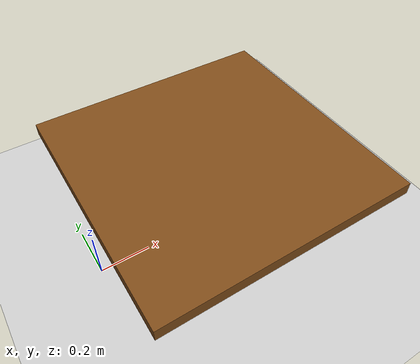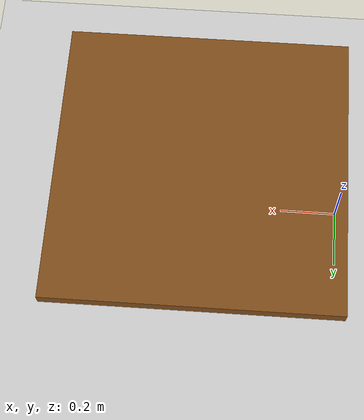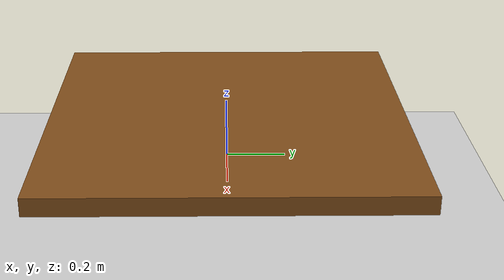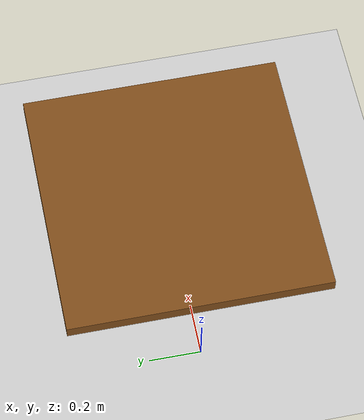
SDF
<?xml version="1.0"?>
<sdf version="1.6">
  <world name="mycobot_world">
    <!-- Physics settings -->
    <physics type="ode">
      <real_time_update_rate>1000</real_time_update_rate>
    </physics>

    <!-- Sun -->
    <include>
      <uri>model://sun</uri>
    </include>

    <!-- Ground plane -->
    <include>
      <uri>model://ground_plane</uri>
    </include>

    <!-- Simple table -->
    <model name="table">
      <static>true</static>
      <link name="table_link">
        <collision name="table_collision">
          <geometry>
            <box><size>1.0 1.0 0.05</size></box>
          </geometry>
        </collision>
        <visual name="table_visual">
          <geometry>
            <box><size>1.0 1.0 0.05</size></box>
          </geometry>
          <material>
            <ambient>0.5 0.3 0.1 1</ambient>
            <diffuse>0.5 0.3 0.1 1</diffuse>
          </material>
        </visual>
      </link>
      <pose>0.5 0 0.35 0 0 0</pose>
    </model>

  </world>
</sdf>
